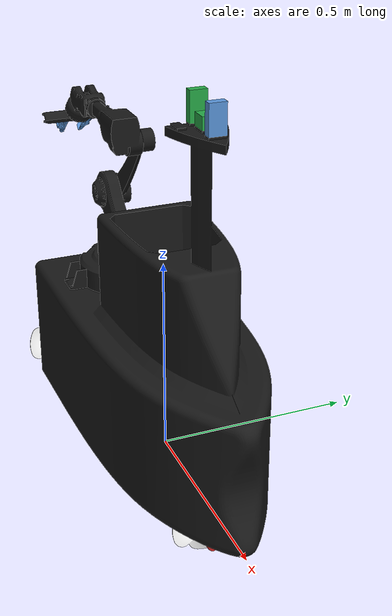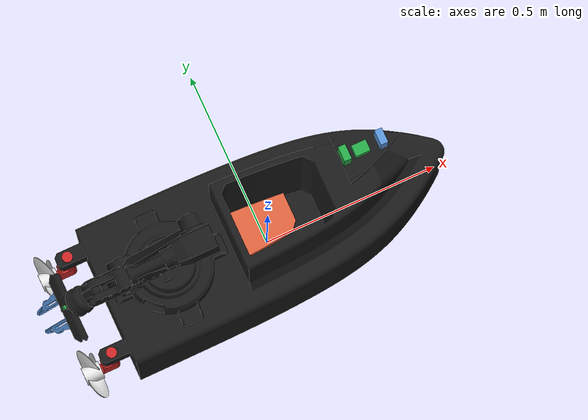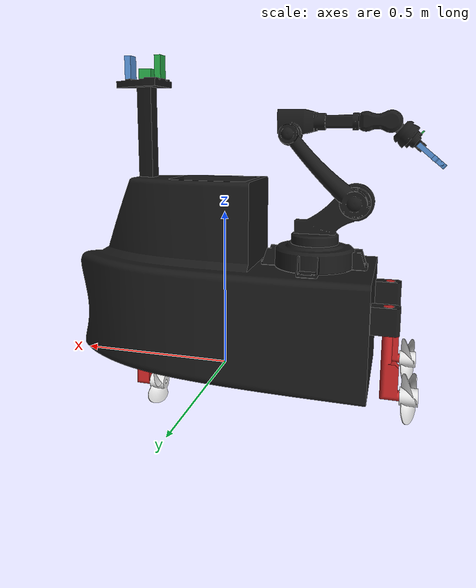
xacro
<?xml version="1.0" ?>
<robot name="ros_robot" xmlns:xacro="http://www.ros.org/wiki/xacro">

<xacro:include filename="$(find ros_robot_description)/urdf/materials.xacro" />
<xacro:include filename="$(find ros_robot_description)/urdf/ros_robot.trans" />
<xacro:include filename="$(find ros_robot_description)/urdf/ros_robot.gazebo" />

<xacro:property name="visual_camera" value="false" />
<xacro:include filename="$(find ros_robot_description)/urdf/Sensors/FrontCamera.xacro" />
<xacro:include filename="$(find ros_robot_description)/urdf/Sensors/LeftCamera.xacro" />
<xacro:include filename="$(find ros_robot_description)/urdf/Sensors/RightCamera.xacro" />
<xacro:include filename="$(find ros_robot_description)/urdf/Sensors/BackCamera.xacro" />
<xacro:include filename="$(find ros_robot_description)/urdf/Sensors/ArmCamera.xacro" />

<xacro:include filename="$(find ros_robot_description)/urdf/Sensors/imu_sensor.xacro"/>
<xacro:include filename="$(find ros_robot_description)/urdf/Sensors/GpsSensor.xacro" />

<xacro:include filename="$(find ros_robot_description)/urdf/Thrusters/CenterThruster.xacro" />
<xacro:include filename="$(find ros_robot_description)/urdf/Thrusters/BackThrusterRight.xacro" />
<xacro:include filename="$(find ros_robot_description)/urdf/Thrusters/BackThrusterLeft.xacro" />
<xacro:include filename="$(find ros_robot_description)/urdf/Thrusters/Thrusters.gazebo" />

<xacro:include filename="$(find ros_robot_description)/urdf/RobotArm/RobotArm.xacro" />
<xacro:include filename="$(find ros_robot_description)/urdf/RobotArm/RobotArm.gazebo" />
<xacro:include filename="$(find ros_robot_description)/urdf/RobotArm/RobotArm.trans" />

<link name="base_link">
  <inertial>
    <origin xyz="-0.03405684570032273 0.00013676637886197947 0.20520744004115304" rpy="0 0 0"/>
    <mass value="110"/>
    <inertia ixx="0.1" iyy="0.1" izz="0.1" ixy="0" iyz="0" ixz="0"/>
  </inertial>
  <visual>
    <origin xyz="0 0 0" rpy="0 0 0"/>
    <geometry>
      <mesh filename="package://ros_robot_description/meshes/base_link.stl" scale="0.001 0.001 0.001"/>
    </geometry>
    <material name="paint_enamel_glossy_black"/>
  </visual>
  <collision>
    <origin xyz="0 0 0" rpy="0 0 0"/>
    <geometry>
      <mesh filename="package://ros_robot_description/meshes/base_link.stl" scale="0.001 0.001 0.001"/>
    </geometry>
  </collision>
</link>

<link name="GarbageBot_1">
  <inertial>
    <origin xyz="-0.00415631769494771 -3.4033212155202414e-06 0.015000000000000027" rpy="0 0 0"/>
    <mass value="11"/>
    <inertia ixx="0.038479" iyy="0.059958" izz="0.096695" ixy="2e-06" iyz="-0.0" ixz="-0.0"/>
  </inertial>
  <visual>
    <origin xyz="-0.034008 -0.000106 -0.045" rpy="0 0 0"/>
    <geometry>
      <mesh filename="package://ros_robot_description/meshes/GarbageBot_1.stl" scale="0.001 0.001 0.001"/>
    </geometry>
    <material name="paint_enamel_glossy_yellow_1"/>
  </visual>
  <collision>
    <origin xyz="-0.034008 -0.000106 -0.045" rpy="0 0 0"/>
    <geometry>
      <mesh filename="package://ros_robot_description/meshes/GarbageBot_1.stl" scale="0.001 0.001 0.001"/>
    </geometry>
  </collision>
</link>

<link name="world_boat_link"/>

<joint name="world_boat_joint" type="fixed">
  <origin xyz="0 0 0" rpy="0 0 0"/>
  <parent link="world_boat_link"/>
  <child link="base_link"/>
</joint>

<joint name="GarbageMount" type="fixed">
  <origin xyz="-0.03401 0.080602 0.045" rpy="0 0 0"/>
  <parent link="base_link"/>
  <child link="GarbageBot_1"/>
</joint>

</robot>

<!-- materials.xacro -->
<robot name="ros_robot" xmlns:xacro="http://www.ros.org/wiki/xacro" >

<material name="silver_default">
  <color rgba="0.700 0.700 0.700 1.000"/>
</material>
<material name="paint_enamel_glossy_black">
  <color rgba="0.09803921568627451 0.09803921568627451 0.09803921568627451 1.0"/>
</material>
<material name="paint_enamel_glossy_red_1_1">
  <color rgba="0.8980392156862745 0.14901960784313725 0.14901960784313725 1.0"/>
</material>
<material name="aluminum_anodized_glossy_blue">
  <color rgba="0.34901960784313724 0.5843137254901961 0.8549019607843137 1.0"/>
</material>
<material name="paint_enamel_glossy_red_1">
  <color rgba="0.15294117647058825 0.6666666666666666 0.2823529411764706 1.0"/>
</material>
<material name="paint_enamel_glossy_yellow_1">
  <color rgba="0.8666666666666667 0.3843137254901961 0.23921568627450981 1.0"/>
</material>

</robot>

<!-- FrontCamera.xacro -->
<robot name="ros_robot" xmlns:xacro="http://www.ros.org/wiki/xacro" >

<link name="CameraFront_1">
  <inertial>
    <origin xyz="3.8540129299047265e-07 1.6197341779798711e-07 0.03500000000000025" rpy="0 0 0"/>
    <mass value="0.003"/>
    <inertia ixx="0.000238" iyy="0.000194" izz="7.3e-05" ixy="-0.0" iyz="0.0" ixz="-0.0"/>
  </inertial>
  <visual>
    <origin xyz="-0.309007 -0.000103 -0.91" rpy="0 0 0"/>
    <geometry>
      <mesh filename="package://ros_robot_description/meshes/CameraFront_1.stl" scale="0.001 0.001 0.001"/>
    </geometry>
    <material name="aluminum_anodized_glossy_blue"/>
  </visual>
  <collision>
    <origin xyz="-0.309007 -0.000103 -0.91" rpy="0 0 0"/>
    <geometry>
      <mesh filename="package://ros_robot_description/meshes/CameraFront_1.stl" scale="0.001 0.001 0.001"/>
    </geometry>
  </collision>
</link>

<joint name="CameraFrontMount" type="fixed">
  <origin xyz="0.309007 0.000103 0.91" rpy="0 0 0"/>
  <parent link="base_link"/>
  <child link="CameraFront_1"/>
</joint>

<joint name="CameraFront_optical_joint" type="fixed">
  <origin xyz="0 0 0" rpy="-1.57079632679 0 -1.57079632679"/>
  <parent link="CameraFront_1"/>
  <child link="CameraFront_link_optical"/>
</joint>

<link name="CameraFront_link_optical"> </link>

<gazebo reference="CameraFront_1">
        <sensor name="cameraFront" type="camera">
            <pose> 0 0 0 0 0 0 </pose>
            <visualize>${visual_camera}</visualize>
            <update_rate>10</update_rate>

            <camera>
                <horizontal_fov>1.57079632679</horizontal_fov>
                <image>
                    <format>R8G8B8</format>
                    <width>1280</width>
                    <height>1024</height>
                </image>
                <clip>
                    <near>0.05</near>
                    <far>200</far>
                </clip>
            </camera>

            <plugin name="camera_front_controller" filename="libgazebo_ros_camera.so">
                <cameraName>ros_robot/camera_front</cameraName>
                <frame_name>CameraFront_link_optical</frame_name>
                <imageTopicName>image_raw</imageTopicName>
                <cameraInfoTopicName>camera_info</cameraInfoTopicName>
            </plugin>
        </sensor>
</gazebo>

<gazebo reference="CameraFront_1">
  <material>Gazebo/Green</material>
  <mu1>0.2</mu1>
  <mu2>0.2</mu2>
  <selfCollide>true</selfCollide>
</gazebo>

</robot>

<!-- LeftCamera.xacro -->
<robot name="ros_robot" xmlns:xacro="http://www.ros.org/wiki/xacro" >

<link name="CameraLeft_1">
  <inertial>
    <origin xyz="3.8540129332353956e-07 1.6197341751178485e-07 0.03499999999999992" rpy="0 0 0"/>
    <mass value="0.003"/>
    <inertia ixx="0.000194" iyy="0.000238" izz="7.3e-05" ixy="0.0" iyz="-0.0" ixz="0.0"/>
  </inertial>
</link>

<joint name="CameraLeftMount" type="fixed">
  <origin xyz="0.17 0.045103 0.91" rpy="0 0.4 1.57079632679"/>
  <parent link="base_link"/>
  <child link="CameraLeft_1"/>
</joint>

<joint name="CameraLeft_optical_joint" type="fixed">
  <origin xyz="0 0 0" rpy="-1.57079632679 0 -1.57079632679"/>
  <parent link="CameraLeft_1"/>
  <child link="CameraLeft_left_link_optical"/>
</joint>

<link name="CameraLeft_left_link_optical"> </link>

<gazebo reference="CameraLeft_1">
        <sensor name="cameraLeft" type="depth">
            <pose> 0 0 0 0 0 0 </pose>
            <always_on>1</always_on>
            <visualize>true</visualize>
              <camera>
                  <horizontal_fov>2</horizontal_fov>
                  <image>
                      <width>640</width>
                      <height>480</height>
                      <format>L8</format>
                  </image>
                  <depth_camera>

                  </depth_camera>
                  <clip>
                      <near>0.01</near>
                      <far>100</far>
                  </clip>
              </camera>
            <plugin name="kinect_plugin" filename="libgazebo_ros_openni_kinect.so">
              <baseline>0.1</baseline>
              <alwaysOn>true</alwaysOn>
              <updateRate>10</updateRate>
              <cameraName>Left_depth</cameraName>
              <imageTopicName>sensors/Left_depth/image_raw</imageTopicName>
              <cameraInfoTopicName>sensors/Left_depth/camera_info</cameraInfoTopicName>
              <depthImageTopicName>sensors/Left_depth/image_raw_depth</depthImageTopicName>
              <depthImageInfoTopicName>sensors/Left_depth/camera_info</depthImageInfoTopicName>
              <pointCloudTopicName>sensors/Left_depth/3d_cloud</pointCloudTopicName>
              <frameName>CameraLeft_left_link_optical</frameName>
              <pointCloudCutoff>0.4</pointCloudCutoff>
              <pointCloudCutoffMax>4.0</pointCloudCutoffMax>-
            </plugin>
        </sensor>
</gazebo>

<gazebo reference="CameraLeft_1">
  <material>Gazebo/Green</material>
  <mu1>0.2</mu1>
  <mu2>0.2</mu2>
  <selfCollide>true</selfCollide>
</gazebo>

</robot>

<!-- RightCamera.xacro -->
<robot name="ros_robot" xmlns:xacro="http://www.ros.org/wiki/xacro" >

<link name="CameraRight_1">
  <inertial>
    <origin xyz="3.8540129332353956e-07 1.6197341752566263e-07 0.03500000000000014" rpy="0 0 0"/>
    <mass value="0.003"/>
    <inertia ixx="0.000194" iyy="0.000238" izz="7.3e-05" ixy="0.0" iyz="-0.0" ixz="0.0"/>
  </inertial>
</link>

<joint name="CameraRightMount" type="fixed">
  <origin xyz="0.17 -0.044897 0.91" rpy="0 0.4 -1.57"/>
  <parent link="base_link"/>
  <child link="CameraRight_1"/>
</joint>

<joint name="CameraRight_optical_joint" type="fixed">
  <origin xyz="0 0 -0.05" rpy="-1.57079632679 0 -1.57079632679"/>
  <parent link="CameraRight_1"/>
  <child link="CameraRight_right_link_optical"/>
</joint>

<link name="CameraRight_right_link_optical"> </link>
<gazebo reference="CameraRight_1">
        <sensor name="cameraRight" type="depth">
            <pose> 0 0 0 0 0 0 </pose>
            <always_on>1</always_on>
            <visualize>true</visualize>
              <camera>
                  <horizontal_fov>2</horizontal_fov>
                  <image>
                      <width>640</width>
                      <height>480</height>
                      <format>L8</format>
                  </image>
                  <depth_camera>

                  </depth_camera>
                  <clip>
                      <near>0.01</near>
                      <far>100</far>
                  </clip>
              </camera>
            <plugin name="kinect_plugin2" filename="libgazebo_ros_openni_kinect.so">
              <baseline>0.1</baseline>
              <alwaysOn>true</alwaysOn>
              <updateRate>10</updateRate>
              <cameraName>right_depth</cameraName>
              <imageTopicName>sensors/right_depth/image_raw</imageTopicName>
              <cameraInfoTopicName>sensors/right_depth/camera_info</cameraInfoTopicName>
              <depthImageTopicName>sensors/right_depth/image_raw_depth</depthImageTopicName>
              <depthImageInfoTopicName>sensors/right_depth/camera_info</depthImageInfoTopicName>
              <pointCloudTopicName>sensors/right_depth/3d_cloud</pointCloudTopicName>
              <frameName>CameraRight_right_link_optical</frameName>
              <pointCloudCutoff>0.3</pointCloudCutoff>
            </plugin>
        </sensor>
</gazebo>

<gazebo reference="CameraRight_1">
  <material>Gazebo/Green</material>
  <mu1>0.2</mu1>
  <mu2>0.2</mu2>
  <selfCollide>true</selfCollide>
</gazebo>

</robot>

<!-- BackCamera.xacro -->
<robot name="ros_robot" xmlns:xacro="http://www.ros.org/wiki/xacro" >

<link name="CameraBack_1">
  <inertial>
    <origin xyz="3.8540129290720593e-07 1.6197341744270761e-07 0.03499999999999992" rpy="0 0 0"/>
    <mass value="0.003"/>
    <inertia ixx="0.000238" iyy="0.000194" izz="7.3e-05" ixy="-0.0" iyz="0.0" ixz="0.0"/>
  </inertial>
  <visual>
    <origin xyz="-0.209007 -0.000103 -0.91" rpy="0 0 0"/>
    <geometry>
      <mesh filename="package://ros_robot_description/meshes/CameraBack_1.stl" scale="0.001 0.001 0.001"/>
    </geometry>
    <material name="paint_enamel_glossy_red_1"/>
  </visual>
  <collision>
    <origin xyz="-0.209007 -0.000103 -0.91" rpy="0 0 0"/>
    <geometry>
      <mesh filename="package://ros_robot_description/meshes/CameraBack_1.stl" scale="0.001 0.001 0.001"/>
    </geometry>
  </collision>
</link>

<joint name="CameraBackMount" type="fixed">
  <origin xyz="0.209007 0.000103 0.91" rpy="0 0 0"/>
  <parent link="base_link"/>
  <child link="CameraBack_1"/>
</joint>

<joint name="CameraBack_optical_joint" type="fixed">
  <origin xyz="0 0 0" rpy="-1.57079632679 0 -1.57079632679"/>
  <parent link="CameraBack_1"/>
  <child link="CameraBack_link_optical"/>
</joint>

<link name="CameraBack_link_optical"> </link>

<gazebo reference="CameraBack_1">
        <sensor name="cameraBack" type="camera">
            <pose> 0 0 0 0 0 0 </pose>
            <visualize>${visual_camera}</visualize>
            <update_rate>10</update_rate>

            <camera>
                <horizontal_fov>1.3962634</horizontal_fov>
                <image>
                    <format>R8G8B8</format>
                    <width>640</width>
                    <height>480</height>
                </image>
                <clip>
                    <near>0.05</near>
                    <far>200</far>
                </clip>
            </camera>

            <plugin name="camera_back_controller" filename="libgazebo_ros_camera.so">
                <cameraName>ros_robot/camera_back</cameraName>
                <frame_name>CameraBack_link_optical</frame_name>
                <imageTopicName>image_raw</imageTopicName>
                <cameraInfoTopicName>camera_info</cameraInfoTopicName>
            </plugin>
        </sensor>
</gazebo>

<gazebo reference="CameraBack_1">
  <material>Gazebo/Green</material>
  <mu1>0.2</mu1>
  <mu2>0.2</mu2>
  <selfCollide>true</selfCollide>
</gazebo>

</robot>

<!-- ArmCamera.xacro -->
<robot name="ros_robot" xmlns:xacro="http://www.ros.org/wiki/xacro" >

<link name="CameraArm_1">
  <inertial>
    <origin xyz="-0.0032137949239799957 -2.2705080194432292e-05 0.0038301783339353968" rpy="0 0 0"/>
    <mass value="0.003"/>
    <inertia ixx="0.0" iyy="0.0" izz="0.0" ixy="0.0" iyz="-0.0" ixz="-0.0"/>
  </inertial>
  <visual>
    <origin xyz="0.579299 0.032336 -0.741936" rpy="0 0 0"/>
    <geometry>
      <mesh filename="package://ros_robot_description/meshes/CameraArm_1.stl" scale="0.001 0.001 0.001"/>
    </geometry>
    <material name="paint_enamel_glossy_red_1"/>
  </visual>
  <collision>
    <origin xyz="0.579299 0.032336 -0.741936" rpy="0 0 0"/>
    <geometry>
      <mesh filename="package://ros_robot_description/meshes/CameraArm_1.stl" scale="0.001 0.001 0.001"/>
    </geometry>
  </collision>
</link>

<joint name="CameraArmMount" type="fixed">
  <origin xyz="-0.020679 -0.000143 0.0192" rpy="0 0 0"/>
  <parent link="L6_1"/>
  <child link="CameraArm_1"/>
</joint>

<joint name="CameraArm_optical_joint" type="fixed">
  <origin xyz="0 0 0" rpy="-1.57079632679 0 -1.57079632679"/>
  <parent link="CameraArm_1"/>
  <child link="CameraArm_link_optical"/>
</joint>

<link name="CameraArm_link_optical"> </link>

<gazebo reference="CameraArm_1">
        <sensor name="cameraArm" type="camera">
            <pose> 0 0 0 0 0 0 </pose>
            <visualize>${visual_camera}</visualize>
            <update_rate>10</update_rate>

            <camera>
                <horizontal_fov>1.3962634</horizontal_fov>
                <image>
                    <format>R8G8B8</format>
                    <width>640</width>
                    <height>480</height>
                </image>
                <clip>
                    <near>0.05</near>
                    <far>200</far>
                </clip>
            </camera>

            <plugin name="camera_arm_controller" filename="libgazebo_ros_camera.so">
                <cameraName>ros_robot/camera_arm</cameraName>
                <frame_name>CameraArm_link_optical</frame_name>
                <imageTopicName>image_raw</imageTopicName>
                <cameraInfoTopicName>camera_info</cameraInfoTopicName>
            </plugin>
        </sensor>
</gazebo>

<gazebo reference="CameraArm_1">
  <material>Gazebo/Green</material>
  <mu1>0.2</mu1>
  <mu2>0.2</mu2>
  <selfCollide>true</selfCollide>
</gazebo>

</robot>

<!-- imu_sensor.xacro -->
<robot name="ros_robot" xmlns:xacro="http://www.ros.org/wiki/xacro" >

  <link name="imu_link">
    <visual name="imu_wamv_visual">
      &gt;
      <geometry>
        <box size="0.05 0.025 0.005"/>
      </geometry>
      <material name="visual_material">
        <color rgba="1.0 0.0 00 1.0"/>
      </material>
    </visual>
    <inertial>
      <mass value="0.1"/>
      <inertia ixx="0.000083" ixy="0.0" ixz="0.0" iyy="0.000083" iyz="0.0" izz="0.0125"/>
    </inertial>
  </link>

  <joint name="imu_joint" type="fixed">
    <origin rpy="0 0 0" xyz="0 0 0"/>
    <parent link="base_link"/>
    <child link="imu_link"/>
  </joint>

  <joint name="magnometer_joint" type="fixed">
    <origin xyz="0 0 0" rpy="0 0 0"/>
    <parent link="imu_link"/>
    <child link="magnometer_link"/>
  </joint>
  <link name="magnometer_link"> </link>

  <gazebo>
    <plugin filename="libhector_gazebo_ros_imu.so" name="imu_plugin">
      <updateRate>100</updateRate>
      <bodyName>imu_link</bodyName>
      <topicName>sensors/imu/data</topicName>
      <serviceName>sensors/imu_service</serviceName>
      <!-- Manually prepend namespace to tf frame. -->
      <frameId>imu_link</frameId>
      <alwaysOn>true</alwaysOn>
      <accelOffset>0.0 0.0 0.0</accelOffset>
      <accelDrift>0.0 0.0 0.0</accelDrift>
      <accelDriftFrequency>0.00027 0.00027 0.000027</accelDriftFrequency>
      <accelGaussianNoise>0.0 0.0 0.0</accelGaussianNoise>
      <rateOffset>0.0 0.0 0.0</rateOffset>
      <rateDrift>0.0 0.0 0.0</rateDrift>
      <rateDriftFrequency>0.00027 0.00027 0.000027</rateDriftFrequency>
      <rateGaussianNoise>0.0 0.0 0.0</rateGaussianNoise>
      <yawOffset>0.0</yawOffset>
      <yawDrift>0.0</yawDrift>
      <yawDriftFrequency>0.00027</yawDriftFrequency>
      <yawGaussianNoise>0.0</yawGaussianNoise>
    </plugin>
  </gazebo>

  <gazebo>
    <plugin filename="libhector_gazebo_ros_magnetic.so" name="magnetometer">
      <updateRate>20.0</updateRate>
      <bodyname>magnometer_link</bodyname>
      <topicName>sensors/magnometer</topicName>
      <referenceHeading>72.0</referenceHeading>
      <magnitude>5.7065E-5</magnitude>
      <declination>12.3</declination>
      <inclination>64.2</inclination>
      <offset>0 0 0</offset>
      <driftFrequency>0 0 0</driftFrequency>
      <gaussianNoise>0 0 0</gaussianNoise>
    </plugin>
  </gazebo>
</robot>

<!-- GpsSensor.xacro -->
<robot name="ros_robot" xmlns:xacro="http://www.ros.org/wiki/xacro" >

<link name="GPS_1">
  <inertial>
    <origin xyz="3.8540129310149496e-07 1.6197341740718644e-07 0.015000000000000013" rpy="0 0 0"/>
    <mass value="0.003"/>
    <inertia ixx="4.2e-05" iyy="5.9e-05" izz="5.9e-05" ixy="0.0" iyz="-0.0" ixz="-0.0"/>
  </inertial>
  <visual>
    <origin xyz="-0.254007 -0.000103 -0.91" rpy="0 0 0"/>
    <geometry>
      <mesh filename="package://ros_robot_description/meshes/GPS_1.stl" scale="0.001 0.001 0.001"/>
    </geometry>
    <material name="paint_enamel_glossy_red_1"/>
  </visual>
  <collision>
    <origin xyz="-0.254007 -0.000103 -0.91" rpy="0 0 0"/>
    <geometry>
      <mesh filename="package://ros_robot_description/meshes/GPS_1.stl" scale="0.001 0.001 0.001"/>
    </geometry>
  </collision>
</link>

<joint name="gpsmount" type="fixed">
  <origin xyz="0.254007 0.000103 0.91" rpy="0 0 0"/>
  <parent link="base_link"/>
  <child link="GPS_1"/>
</joint>

<joint name="Gps_joint" type="fixed">
  <origin xyz="0 0 0" rpy="0 0 0"/>
  <parent link="GPS_1"/>
  <child link="GPS_link"/>
</joint>

<link name="GPS_link"> </link>
  <gazebo>
    <plugin filename="libhector_gazebo_ros_gps.so" name="gps_plugin_gps">
      <updateRate>1</updateRate>
      <alwaysOn>true</alwaysOn>
      <bodyName>GPS_1</bodyName>
      <!-- Manually prepend namespace to tf frame. -->
      <frameId>GPS_1</frameId>
      <topicName>sensors/gps/fix</topicName>
      <velocityTopicName>sensors/gps/fix_velocity</velocityTopicName>
      <useWorldSphericalCoordinates>true</useWorldSphericalCoordinates>
      <offset>0.0 0.0 0.0</offset>
      <drift>0.0 0.0 0.0</drift>
      <gaussianNoise>0 0 0</gaussianNoise>
      <velocityOffset>0.0 0.0 0.0</velocityOffset>
      <velocityDrift>0.0 0.0 0.0</velocityDrift>
      <velocityGaussianNoise>0.0 0.0 0.0</velocityGaussianNoise>
    </plugin>
  </gazebo>
<gazebo reference="GPS_1">
  <material>Gazebo/Green</material>
  <mu1>0.2</mu1>
  <mu2>0.2</mu2>
  <selfCollide>true</selfCollide>
</gazebo>

</robot>

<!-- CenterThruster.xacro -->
<robot name="ros_robot" xmlns:xacro="http://www.ros.org/wiki/xacro" >

<link name="CenterThruster_1">
  <inertial>
    <origin xyz="-0.011171969587361441 2.2249469140611026e-07 -0.0643616955563667" rpy="0 0 0"/>
    <mass value="1.1982535523983007"/>
    <inertia ixx="0.001394" iyy="0.001546" izz="0.000303" ixy="-0.0" iyz="-0.0" ixz="8.2e-05"/>
  </inertial>
  <visual>
    <origin xyz="-0.304045 -0.000104 -0.010094" rpy="0 0 0"/>
    <geometry>
      <mesh filename="package://ros_robot_description/meshes/CenterThruster_1.stl" scale="0.001 0.001 0.001"/>
    </geometry>
    <material name="paint_enamel_glossy_red"/>
  </visual>
</link>

<link name="CenterPropeller_1">
  <inertial>
    <origin xyz="-0.028395303528591626 -6.693132053848039e-06 -1.4004445823653788e-05" rpy="0 0 0"/>
    <mass value="0.6485270682886274"/>
    <inertia ixx="0.000738" iyy="0.000497" izz="0.000497" ixy="0.0" iyz="0.0" ixz="-0.0"/>
  </inertial>
  <visual>
    <origin xyz="-0.26444 -0.000104 0.097906" rpy="0 0 0"/>
    <geometry>
      <mesh filename="package://ros_robot_description/meshes/CenterPropellerR_1.stl" scale="0.001 0.001 0.001"/>
    </geometry>
    <material name="abs_white"/>
  </visual>
  <collision>
    <origin xyz="-0.26444 -0.000104 0.097906" rpy="0 0 0"/>
    <geometry>
      <mesh filename="package://ros_robot_description/meshes/CenterPropellerR_1.stl" scale="0.001 0.001 0.001"/>
    </geometry>
  </collision>

</link>

<joint name="CenterThruster" type="revolute">
  <axis xyz="0.0 0.0 -1.0"/>
  <origin xyz="0.304045 0.000104 0.010094" rpy="0 0 0"/>
  <parent link="base_link"/>
  <child link="CenterThruster_1"/>
  <limit effort="10" lower="-3.141592653589793" upper="3.141592653589793" velocity="10"/>
</joint>

<joint name="CenterThrusterProp" type="continuous">
  <axis xyz="-1.0 0.0 -0.0"/>
  <origin xyz="-0.039605 0.0 -0.108" rpy="0 0 0"/>
  <parent link="CenterThruster_1"/>
  <child link="CenterPropeller_1"/>
  <limit effort="100" velocity="100"/>
  <dynamics damping="0.05" friction="0.05"/>
</joint>

<gazebo reference="CenterPropeller_1">
  <material>Gazebo/Grey</material>
  <mu1>0.2</mu1>
  <mu2>0.2</mu2>
  <selfCollide>false</selfCollide>
</gazebo>

<gazebo reference="CenterThruster_1">
  <material>Gazebo/Red</material>
  <mu1>0.02</mu1>
  <mu2>0.02</mu2>
  <selfCollide>false</selfCollide>
</gazebo>

</robot>

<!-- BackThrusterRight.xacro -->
<robot name="ros_robot" xmlns:xacro="http://www.ros.org/wiki/xacro" >

<link name="BackThrusterR_1">
  <inertial>
    <origin xyz="-0.006792599790641174 -3.537567924427609e-07 -0.15892739606734108" rpy="0 0 0"/>
    <mass value="1.9708306012870964"/>
    <inertia ixx="0.011921" iyy="0.012132" izz="0.000443" ixy="0.0" iyz="-0.0" ixz="0.000811"/>
  </inertial>
  <visual>
    <origin xyz="0.513677 0.131301 -0.279079" rpy="0 0 0"/>
    <geometry>
      <mesh filename="package://ros_robot_description/meshes/BackThrusterR_1.stl" scale="0.001 0.001 0.001"/>
    </geometry>
    <material name="paint_enamel_glossy_red"/>
  </visual>

  <collision>
    <origin xyz="0.513677 0.131301 -0.279079" rpy="0 0 0"/>
    <geometry>
      <mesh filename="package://ros_robot_description/meshes/BackThrusterR_1.stl" scale="0.001 0.001 0.001"/>
    </geometry>
  </collision>
</link>

<link name="BackPropellerR_1">
  <inertial>
    <origin xyz="-0.02691595753329501 -7.269386166353087e-06 -1.4490021474883319e-05" rpy="0 0 0"/>
    <mass value="0.6485270682886274"/>
    <inertia ixx="0.000738" iyy="0.000497" izz="0.000497" ixy="0.0" iyz="0.0" ixz="-0.0"/>
  </inertial>
  <visual>
    <origin xyz="0.553282 0.131301 -0.022079" rpy="0 0 0"/>
    <geometry>
      <mesh filename="package://ros_robot_description/meshes/BackPropellerR_1.stl" scale="0.001 0.001 0.001"/>
    </geometry>
    <material name="abs_white"/>
  </visual>
  <collision>
    <origin xyz="0.553282 0.131301 -0.022079" rpy="0 0 0"/>
    <geometry>
      <mesh filename="package://ros_robot_description/meshes/BackPropellerR_1.stl" scale="0.001 0.001 0.001"/>
    </geometry>
  </collision>
</link>

<joint name="BackThrusterR" type="revolute">
  <origin xyz="-0.513677 -0.131301 0.279079" rpy="0 0 0"/>
  <axis xyz="0.0 0.0 1.0"/>
  <parent link="base_link"/>
  <child link="BackThrusterR_1"/>
  <limit effort="10" lower="-3.141592653589793" upper="3.141592653589793" velocity="10"/>
</joint>

<joint name="BackThrusterRProp" type="continuous">
  <origin xyz="-0.039605 0.0 -0.257" rpy="0 0 0"/>
  <parent link="BackThrusterR_1"/>
  <child link="BackPropellerR_1"/>
  <axis xyz="-1.0 0.0 0.0"/>
  <limit effort="100" velocity="100"/>
  <dynamics damping="0.05" friction="0.05"/>
</joint>

<gazebo reference="BackPropellerR_1">
  <material>Gazebo/Grey</material>
  <mu1>0.2</mu1>
  <mu2>0.2</mu2>
  <selfCollide>true</selfCollide>
</gazebo>
<gazebo reference="BackThrusterR_1">
  <material>Gazebo/Red</material>
  <mu1>0.2</mu1>
  <mu2>0.2</mu2>
  <selfCollide>true</selfCollide>
</gazebo>

</robot>

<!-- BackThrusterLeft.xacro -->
<robot name="ros_robot" xmlns:xacro="http://www.ros.org/wiki/xacro" >

<link name="BackThrusterL_1">
  <inertial>
    <origin xyz="-0.00679269338143873 2.1826941126734667e-07 -0.15892739606734135" rpy="0 0 0"/>
    <mass value="1.9708306012870964"/>
    <inertia ixx="0.011921" iyy="0.012132" izz="0.000443" ixy="-0.0" iyz="-0.0" ixz="0.000811"/>
  </inertial>
  <visual>
    <origin xyz="0.515514 -0.150104 -0.279079" rpy="0 0 0"/>
    <geometry>
      <mesh filename="package://ros_robot_description/meshes/BackThrusterL_1.stl" scale="0.001 0.001 0.001"/>
    </geometry>
    <material name="paint_enamel_glossy_red"/>
  </visual>

  <collision>
    <origin xyz="0.515514 -0.150104 -0.279079" rpy="0 0 0"/>
    <geometry>
      <mesh filename="package://ros_robot_description/meshes/BackThrusterL_1.stl" scale="0.001 0.001 0.001"/>
    </geometry>
  </collision>
</link>

<link name="BackPropellerL_1">
  <inertial>
    <origin xyz="-0.02691605112418549 -6.697354491103091e-06 -1.4490021561459898e-05" rpy="0 0 0"/>
    <mass value="0.6485270682886274"/>
    <inertia ixx="0.000738" iyy="0.000497" izz="0.000497" ixy="0.0" iyz="0.0" ixz="-0.0"/>
  </inertial>
  <visual>
    <origin xyz="0.555119 -0.150104 -0.022079" rpy="0 0 0"/>
    <geometry>
      <mesh filename="package://ros_robot_description/meshes/BackPropellerL_1.stl" scale="0.001 0.001 0.001"/>
    </geometry>
    <material name="abs_white"/>
  </visual>
  <collision>
    <origin xyz="0.555119 -0.150104 -0.022079" rpy="0 0 0"/>
    <geometry>
      <mesh filename="package://ros_robot_description/meshes/BackPropellerL_1.stl" scale="0.001 0.001 0.001"/>
    </geometry>
  </collision>
</link>

<joint name="BackThrusterL" type="revolute">
  <origin xyz="-0.515514 0.150104 0.279079" rpy="0 0 0"/>
  <axis xyz="0.0 0.0 -1.0"/>
  <parent link="base_link"/>
  <child link="BackThrusterL_1"/>
  <limit effort="10" lower="-3.141592653589793" upper="3.141592653589793" velocity="10"/>
</joint>
<!--for unknown reason, cant turn prop-->
<joint name="BackThrusterLProp" type="continuous">
  <origin xyz="-0.039605 0.0 -0.257" rpy="0 0 0"/>
  <parent link="BackThrusterL_1"/>
  <child link="BackPropellerL_1"/>
  <axis xyz="-1.0 0.0 0.0"/>
  <limit effort="100" velocity="100"/>
  <dynamics damping="0.05" friction="0.05"/>
</joint>

<gazebo reference="BackPropellerL_1">
  <material>Gazebo/Grey</material>
  <mu1>0.2</mu1>
  <mu2>0.2</mu2>
  <selfCollide>true</selfCollide>
</gazebo>

<gazebo reference="BackThrusterL_1">
  <material>Gazebo/Red</material>
  <mu1>0.02</mu1>
  <mu2>0.02</mu2>
  <selfCollide>true</selfCollide>
</gazebo>

</robot>

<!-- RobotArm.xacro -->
<robot name="ros_robot" xmlns:xacro="http://www.ros.org/wiki/xacro" >
<link name="ArmBase_1">
  <inertial>
    <origin xyz="0.0011454041878000698 0.0011459188982486657 0.030935981147480862" rpy="0 0 0"/>
    <mass value="23.097311942049508"/>
    <inertia ixx="0.093308" iyy="0.093308" izz="0.170178" ixy="0.002057" iyz="-0.000107" ixz="-0.000107"/>
  </inertial>
  <visual>
    <origin xyz="0.285941 -0.000104 -0.346" rpy="0 0 0"/>
    <geometry>
      <mesh filename="package://ros_robot_description/meshes/ArmBase_1.stl" scale="0.001 0.001 0.001"/>
    </geometry>
    <material name="paint_enamel_glossy_black"/>
  </visual>
  <collision>
    <origin xyz="0.285941 -0.000104 -0.346" rpy="0 0 0"/>
    <geometry>
      <mesh filename="package://ros_robot_description/meshes/ArmBase_1.stl" scale="0.001 0.001 0.001"/>
    </geometry>
  </collision>
</link>

<link name="JawL_1">
  <inertial>
    <origin xyz="-0.03189029458894865 0.010364926026270288 -0.02669858127536817" rpy="0 0 0"/>
    <mass value="0.0018"/>
    <inertia ixx="7e-05" iyy="0.000135" izz="9.2e-05" ixy="1.7e-05" iyz="-1.4e-05" ixz="6.3e-05"/>
  </inertial>
  <visual>
    <origin xyz="0.568431 0.078647 -0.714234" rpy="0 0 0"/>
    <geometry>
      <mesh filename="package://ros_robot_description/meshes/JawL_1.stl" scale="0.001 0.001 0.001"/>
    </geometry>
    <material name="aluminum_anodized_glossy_blue"/>
  </visual>
  <collision>
    <origin xyz="0.568431 0.078647 -0.714234" rpy="0 0 0"/>
    <geometry>
      <mesh filename="package://ros_robot_description/meshes/JawL_1.stl" scale="0.001 0.001 0.001"/>
    </geometry>
  </collision>
</link>

<link name="JawR_1">
  <inertial>
    <origin xyz="-0.031644148141077966 -0.010806778264657124 -0.026615162656639213" rpy="0 0 0"/>
    <mass value="0.0018"/>
    <inertia ixx="7e-05" iyy="0.000133" izz="9.1e-05" ixy="-1.7e-05" iyz="1.5e-05" ixz="6.3e-05"/>
  </inertial>
  <visual>
    <origin xyz="0.569079 -0.014621 -0.714234" rpy="0 0 0"/>
    <geometry>
      <mesh filename="package://ros_robot_description/meshes/JawR_1.stl" scale="0.001 0.001 0.001"/>
    </geometry>
    <material name="aluminum_anodized_glossy_blue"/>
  </visual>
  <collision>
    <origin xyz="0.569079 -0.014621 -0.714234" rpy="0 0 0"/>
    <geometry>
      <mesh filename="package://ros_robot_description/meshes/JawR_1.stl" scale="0.001 0.001 0.001"/>
    </geometry>
  </collision>
</link>

<link name="L6_1">
  <inertial>
    <origin xyz="-0.00803331842765087 -5.6862213045037746e-05 -0.006308097141295432" rpy="0 0 0"/>
    <mass value="0.0018"/>
    <inertia ixx="0.000849" iyy="0.000137" izz="0.000847" ixy="5e-06" iyz="0.0" ixz="2e-06"/>
  </inertial>
  <visual>
    <origin xyz="0.55862 0.032193 -0.722736" rpy="0 0 0"/>
    <geometry>
      <mesh filename="package://ros_robot_description/meshes/L6_1.stl" scale="0.001 0.001 0.001"/>
    </geometry>
    <material name="paint_enamel_glossy_black"/>
  </visual>
  <collision>
    <origin xyz="0.55862 0.032193 -0.722736" rpy="0 0 0"/>
    <geometry>
      <mesh filename="package://ros_robot_description/meshes/L6_1.stl" scale="0.001 0.001 0.001"/>
    </geometry>
  </collision>
</link>

<link name="L5_1">
  <inertial>
    <origin xyz="-0.036796724882995124 -0.017742007672748007 -0.0309788762675699" rpy="0 0 0"/>
    <mass value="0.0018"/>
    <inertia ixx="0.00089" iyy="0.001035" izz="0.00093" ixy="-7e-06" iyz="6e-06" ixz="0.000115"/>
  </inertial>
  <visual>
    <origin xyz="0.494564 0.014147 -0.77659" rpy="0 0 0"/>
    <geometry>
      <mesh filename="package://ros_robot_description/meshes/L5_1.stl" scale="0.001 0.001 0.001"/>
    </geometry>
    <material name="paint_enamel_glossy_black"/>
  </visual>
  <collision>
    <origin xyz="0.494564 0.014147 -0.77659" rpy="0 0 0"/>
    <geometry>
      <mesh filename="package://ros_robot_description/meshes/L5_1.stl" scale="0.001 0.001 0.001"/>
    </geometry>
  </collision>
</link>

<link name="L4_1">
  <inertial>
    <origin xyz="-0.07130925015296014 -0.0004956819947762731 3.779030740558298e-07" rpy="0 0 0"/>
    <mass value="0.0018"/>
    <inertia ixx="0.001409" iyy="0.00355" izz="0.003934" ixy="-1.5e-05" iyz="0.0" ixz="0.0"/>
  </inertial>
  <visual>
    <origin xyz="0.386376 0.031395 -0.77659" rpy="0 0 0"/>
    <geometry>
      <mesh filename="package://ros_robot_description/meshes/L4_1.stl" scale="0.001 0.001 0.001"/>
    </geometry>
    <material name="paint_enamel_glossy_black"/>
  </visual>
  <collision>
    <origin xyz="0.386376 0.031395 -0.77659" rpy="0 0 0"/>
    <geometry>
      <mesh filename="package://ros_robot_description/meshes/L4_1.stl" scale="0.001 0.001 0.001"/>
    </geometry>
  </collision>
</link>

<link name="L3_1">
  <inertial>
    <origin xyz="-0.03328919185654228 -0.028027880306747386 0.029701409398983136" rpy="0 0 0"/>
    <mass value="0.0018"/>
    <inertia ixx="0.005791" iyy="0.022845" izz="0.021796" ixy="-0.000731" iyz="-0.000651" ixz="-0.001282"/>
  </inertial>
  <visual>
    <origin xyz="0.205795 -0.000662 -0.74059" rpy="0 0 0"/>
    <geometry>
      <mesh filename="package://ros_robot_description/meshes/L3_1.stl" scale="0.001 0.001 0.001"/>
    </geometry>
    <material name="paint_enamel_glossy_black"/>
  </visual>
  <collision>
    <origin xyz="0.205795 -0.000662 -0.74059" rpy="0 0 0"/>
    <geometry>
      <mesh filename="package://ros_robot_description/meshes/L3_1.stl" scale="0.001 0.001 0.001"/>
    </geometry>
  </collision>
</link>

<link name="L2_1">
  <inertial>
    <origin xyz="0.07950139518636501 0.029355377391545236 0.07574626013664454" rpy="0 0 0"/>
    <mass value="0.0018"/>
    <inertia ixx="0.022491" iyy="0.044645" izz="0.022859" ixy="-4.4e-05" iyz="8.9e-05" ixz="0.021449"/>
  </inertial>
  <visual>
    <origin xyz="0.40378 0.000715 -0.5426" rpy="0 0 0"/>
    <geometry>
      <mesh filename="package://ros_robot_description/meshes/L2_1.stl" scale="0.001 0.001 0.001"/>
    </geometry>
    <material name="paint_enamel_glossy_black"/>
  </visual>
  <collision>
    <origin xyz="0.40378 0.000715 -0.5426" rpy="0 0 0"/>
    <geometry>
      <mesh filename="package://ros_robot_description/meshes/L2_1.stl" scale="0.001 0.001 0.001"/>
    </geometry>
  </collision>
</link>

<link name="L1_1">
  <inertial>
    <origin xyz="-0.04661521084736314 -0.003531900009707762 0.05173767169330279" rpy="0 0 0"/>
    <mass value="0.0018"/>
    <inertia ixx="0.031917" iyy="0.062523" izz="0.04245" ixy="-0.00181" iyz="-0.001638" ixz="-0.023928"/>
  </inertial>
  <visual>
    <origin xyz="0.285941 -0.000104 -0.4306" rpy="0 0 0"/>
    <geometry>
      <mesh filename="package://ros_robot_description/meshes/L1_1.stl" scale="0.001 0.001 0.001"/>
    </geometry>
    <material name="paint_enamel_glossy_black"/>
  </visual>
  <collision>
    <origin xyz="0.285941 -0.000104 -0.4306" rpy="0 0 0"/>
    <geometry>
      <mesh filename="package://ros_robot_description/meshes/L1_1.stl" scale="0.001 0.001 0.001"/>
    </geometry>
  </collision>
</link>

<joint name="JawL" type="prismatic">
  <origin xyz="-0.009811 -0.046454 -0.008502" rpy="0 0 0"/>
  <parent link="L6_1"/>
  <child link="JawL_1"/>
  <axis xyz="0.0 0.999966 -0.008286"/>
  <limit upper="0.005" lower="-0.003" effort="100" velocity="100"/>
</joint>

<joint name="JawR" type="prismatic">
  <origin xyz="-0.010459 0.046814 -0.008502" rpy="0 0 0"/>
  <parent link="L6_1"/>
  <child link="JawR_1"/>
  <axis xyz="0.0 0.999966 -0.008286"/>
  <limit upper="0.0021" lower="-0.005" effort="100" velocity="100"/>
</joint>

<joint name="L6" type="revolute">
  <origin xyz="-0.064056 -0.018046 -0.053854" rpy="0 0 0"/>
  <parent link="L5_1"/>
  <child link="L6_1"/>
  <axis xyz="-0.766026 -0.005327 -0.642788"/>
  <limit upper="3.141593" lower="-3.141593" effort="100" velocity="100"/>
</joint>

<joint name="L5" type="revolute">
  <origin xyz="-0.108188 0.017248 0.0" rpy="0 0 0"/>
  <parent link="L4_1"/>
  <child link="L5_1"/>
  <axis xyz="-0.006953 0.999976 -0.0"/>
  <limit upper="2.617994" lower="-1.308997" effort="100" velocity="100"/>
</joint>

<joint name="L4" type="revolute">
  <origin xyz="-0.180581 -0.032057 0.036" rpy="0 0 0"/>
  <parent link="L3_1"/>
  <child link="L4_1"/>
  <axis xyz="-0.999976 -0.006953 0.0"/>
  <limit upper="3.141593" lower="-3.141593" effort="100" velocity="100"/>
</joint>

<joint name="L3" type="revolute">
  <origin xyz="0.197985 0.001377 0.19799" rpy="0 0 0"/>
  <parent link="L2_1"/>
  <child link="L3_1"/>
  <axis xyz="0.006953 -0.999976 0.0"/>
  <limit upper="0.610865" lower="-4.101524" effort="100" velocity="100"/>
</joint>

<joint name="L2" type="revolute">
  <origin xyz="-0.117839 -0.000819 0.112" rpy="0 0 0"/>
  <parent link="L1_1"/>
  <child link="L2_1"/>
  <axis xyz="-0.006953 0.999976 -0.0"/>
  <limit upper="1.134464" lower="-3.490659" effort="100" velocity="100"/>

  <dynamics damping="100.0" friction="100.0"/>  <!--fjern denne, kun for å holde armen i ro når ingen controller -->
</joint>

<joint name="L1" type="revolute">
  <origin xyz="0.0 0.0 0.0856" rpy="0 0 0"/>
  <parent link="ArmBase_1"/>
  <child link="L1_1"/>
  <axis xyz="0.0 0.0 1.0"/>
  <limit upper="2.181662" lower="-2.181662" effort="100" velocity="100"/>
</joint>

<joint name="ArmBaseLink" type="fixed">
  <origin xyz="-0.285941 0.000104 0.346" rpy="0 0 0"/>
  <parent link="base_link"/>
  <child link="ArmBase_1"/>
</joint>

</robot>
